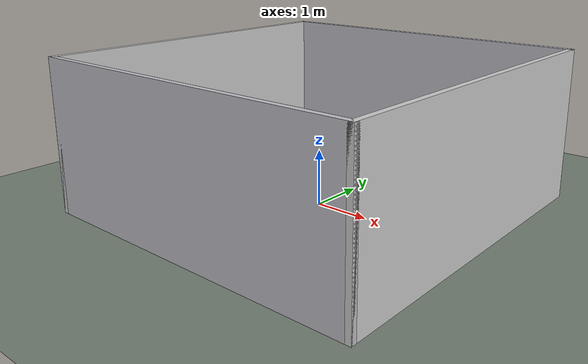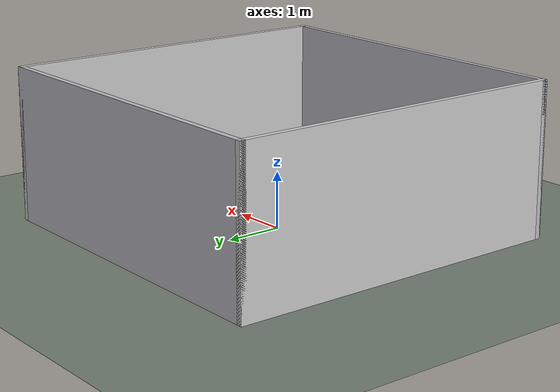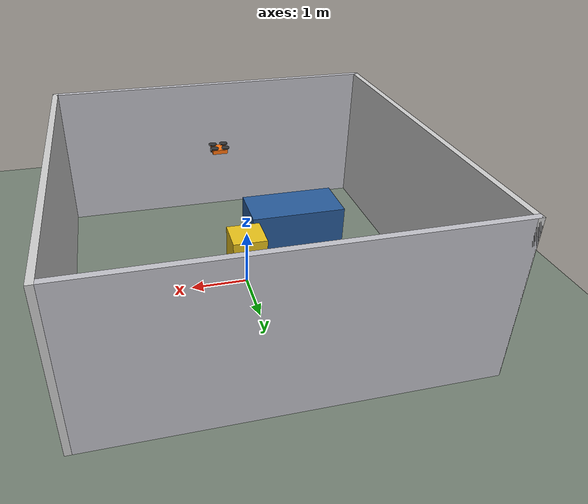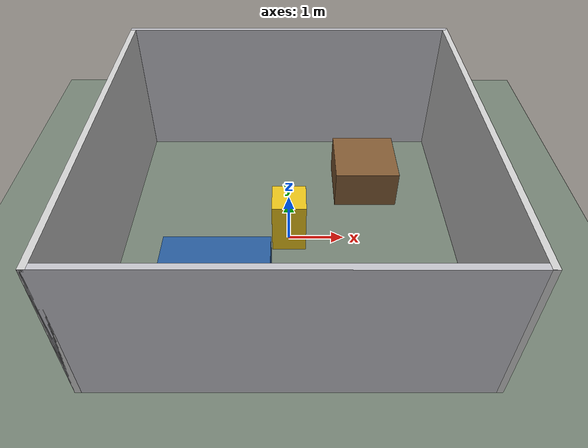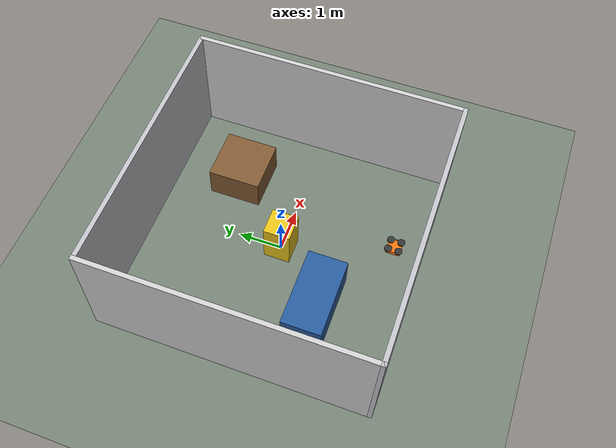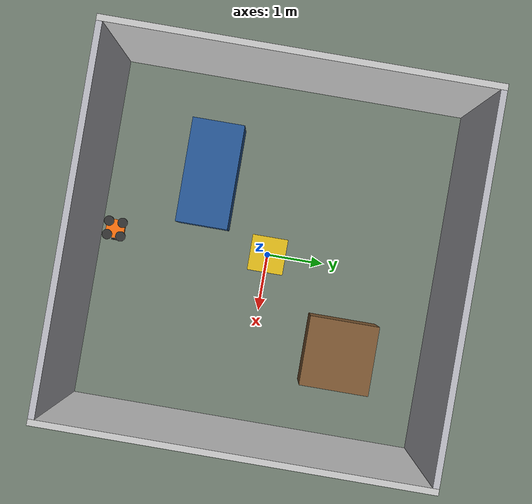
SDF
<?xml version="1.0" ?>
<sdf version="1.7">
  <world name="demo_room">
    <physics name="1ms" type="ignored">
      <max_step_size>0.001</max_step_size>
      <real_time_factor>1.0</real_time_factor>
    </physics>

    <plugin filename="gz-sim-physics-system" name="gz::sim::systems::Physics"/>
    <plugin filename="gz-sim-user-commands-system" name="gz::sim::systems::UserCommands"/>
    <plugin filename="gz-sim-scene-broadcaster-system" name="gz::sim::systems::SceneBroadcaster"/>

    <light type="directional" name="sun">
      <cast_shadows>true</cast_shadows>
      <pose>0 0 12 0 0 0</pose>
      <diffuse>0.85 0.85 0.85 1</diffuse>
      <specular>0.2 0.2 0.2 1</specular>
      <direction>-0.5 0.1 -0.9</direction>
    </light>
    <light type="point" name="room_fill">
      <pose>0 0 2.5 0 0 0</pose>
      <diffuse>0.35 0.35 0.38 1</diffuse>
      <attenuation><range>12</range></attenuation>
    </light>

    <!-- ground plane (inlined, no model:// include) -->
    <model name="ground_plane"><static>true</static>
      <link name="link">
        <collision name="col">
          <geometry><plane><normal>0 0 1</normal><size>20 20</size></plane></geometry>
        </collision>
        <visual name="vis">
          <geometry><plane><normal>0 0 1</normal><size>20 20</size></plane></geometry>
          <material><ambient>0.45 0.5 0.45 1</ambient><diffuse>0.45 0.5 0.45 1</diffuse></material>
        </visual>
      </link>
    </model>

    <!-- walls: x = ±3, y = ±3, height 2.7, thickness 0.1 -->
    <model name="wall_pos_x"><static>true</static><pose>3.05 0 1.35 0 0 0</pose>
      <link name="link">
        <collision name="col"><geometry><box><size>0.1 6.2 2.7</size></box></geometry></collision>
        <visual name="vis"><geometry><box><size>0.1 6.2 2.7</size></box></geometry>
          <material><ambient>0.8 0.8 0.8 1</ambient><diffuse>0.8 0.8 0.8 1</diffuse></material>
        </visual>
      </link>
    </model>
    <model name="wall_neg_x"><static>true</static><pose>-3.05 0 1.35 0 0 0</pose>
      <link name="link">
        <collision name="col"><geometry><box><size>0.1 6.2 2.7</size></box></geometry></collision>
        <visual name="vis"><geometry><box><size>0.1 6.2 2.7</size></box></geometry>
          <material><ambient>0.8 0.8 0.8 1</ambient><diffuse>0.8 0.8 0.8 1</diffuse></material>
        </visual>
      </link>
    </model>
    <model name="wall_pos_y"><static>true</static><pose>0 3.05 1.35 0 0 0</pose>
      <link name="link">
        <collision name="col"><geometry><box><size>6.2 0.1 2.7</size></box></geometry></collision>
        <visual name="vis"><geometry><box><size>6.2 0.1 2.7</size></box></geometry>
          <material><ambient>0.75 0.75 0.78 1</ambient><diffuse>0.75 0.75 0.78 1</diffuse></material>
        </visual>
      </link>
    </model>
    <model name="wall_neg_y"><static>true</static><pose>0 -3.05 1.35 0 0 0</pose>
      <link name="link">
        <collision name="col"><geometry><box><size>6.2 0.1 2.7</size></box></geometry></collision>
        <visual name="vis"><geometry><box><size>6.2 0.1 2.7</size></box></geometry>
          <material><ambient>0.75 0.75 0.78 1</ambient><diffuse>0.75 0.75 0.78 1</diffuse></material>
        </visual>
      </link>
    </model>

    <!-- furniture: sofa-ish / table-ish / target box (same centers as the PCD) -->
    <model name="sofa"><static>true</static><pose>-1.2 -1.2 0.4 0 0 0</pose>
      <link name="link">
        <collision name="col"><geometry><box><size>1.8 0.9 0.8</size></box></geometry></collision>
        <visual name="vis"><geometry><box><size>1.8 0.9 0.8</size></box></geometry>
          <material><ambient>0.15 0.35 0.6 1</ambient><diffuse>0.15 0.35 0.6 1</diffuse></material>
        </visual>
      </link>
    </model>
    <model name="table"><static>true</static><pose>1.5 1.5 0.375 0 0 0</pose>
      <link name="link">
        <collision name="col"><geometry><box><size>1.2 1.2 0.75</size></box></geometry></collision>
        <visual name="vis"><geometry><box><size>1.2 1.2 0.75</size></box></geometry>
          <material><ambient>0.5 0.35 0.2 1</ambient><diffuse>0.5 0.35 0.2 1</diffuse></material>
        </visual>
      </link>
    </model>
    <model name="target_box"><static>true</static><pose>0 0 0.5 0 0 0</pose>
      <link name="link">
        <collision name="col"><geometry><box><size>0.6 0.6 1.0</size></box></geometry></collision>
        <visual name="vis"><geometry><box><size>0.6 0.6 1.0</size></box></geometry>
          <material><ambient>0.9 0.75 0.1 1</ambient><diffuse>0.9 0.75 0.1 1</diffuse></material>
        </visual>
      </link>
    </model>

    <!-- camera drone: static entity teleported by path_player (no physics) -->
    <model name="camera_drone"><static>true</static><pose>0 -2.5 1.5 0 0 0</pose>
      <link name="body">
        <visual name="chassis">
          <geometry><box><size>0.30 0.30 0.08</size></box></geometry>
          <material><ambient>1.0 0.45 0.05 1</ambient><diffuse>1.0 0.45 0.05 1</diffuse></material>
        </visual>
        <visual name="rotor_0"><pose>0.11 0.11 0.07 0 0 0</pose>
          <geometry><cylinder><radius>0.08</radius><length>0.02</length></cylinder></geometry>
          <material><ambient>0.2 0.2 0.2 1</ambient><diffuse>0.2 0.2 0.2 1</diffuse></material>
        </visual>
        <visual name="rotor_1"><pose>-0.11 0.11 0.07 0 0 0</pose>
          <geometry><cylinder><radius>0.08</radius><length>0.02</length></cylinder></geometry>
          <material><ambient>0.2 0.2 0.2 1</ambient><diffuse>0.2 0.2 0.2 1</diffuse></material>
        </visual>
        <visual name="rotor_2"><pose>0.11 -0.11 0.07 0 0 0</pose>
          <geometry><cylinder><radius>0.08</radius><length>0.02</length></cylinder></geometry>
          <material><ambient>0.2 0.2 0.2 1</ambient><diffuse>0.2 0.2 0.2 1</diffuse></material>
        </visual>
        <visual name="rotor_3"><pose>-0.11 -0.11 0.07 0 0 0</pose>
          <geometry><cylinder><radius>0.08</radius><length>0.02</length></cylinder></geometry>
          <material><ambient>0.2 0.2 0.2 1</ambient><diffuse>0.2 0.2 0.2 1</diffuse></material>
        </visual>
        <visual name="camera"><pose>0.14 0 0 0 0 0</pose>
          <geometry><box><size>0.08 0.08 0.06</size></box></geometry>
          <material><ambient>0.05 0.05 0.05 1</ambient><diffuse>0.05 0.05 0.05 1</diffuse></material>
        </visual>
        <collision name="col"><geometry><box><size>0.30 0.30 0.08</size></box></geometry></collision>
      </link>
    </model>
  </world>
</sdf>
